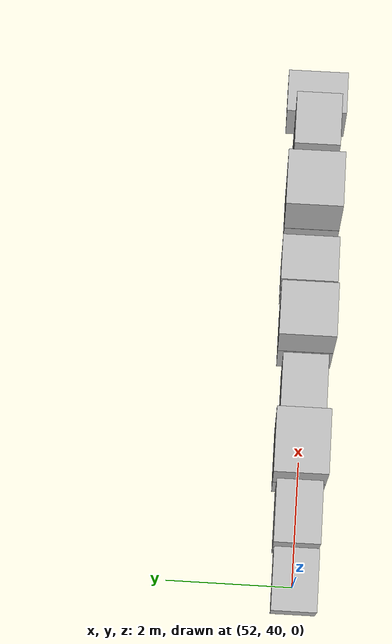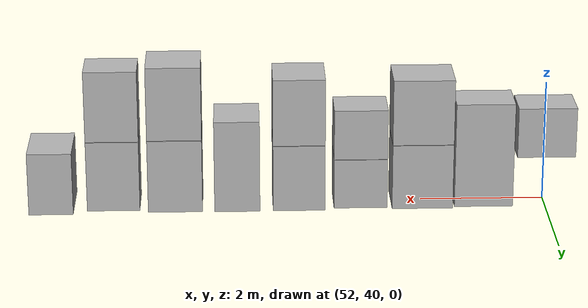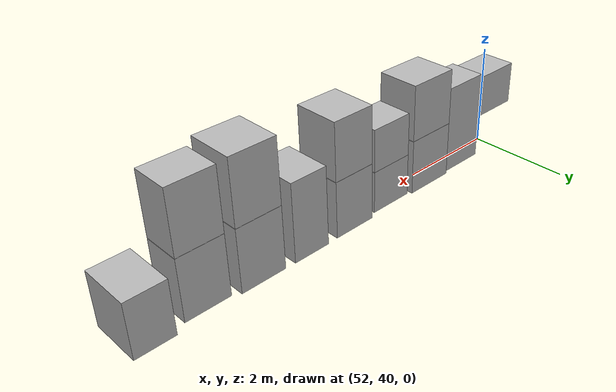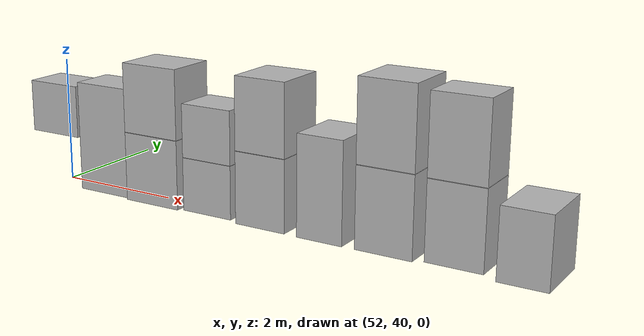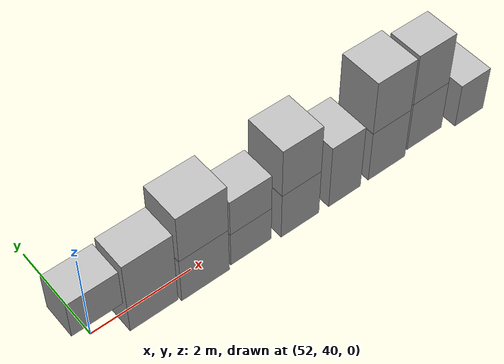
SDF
<sdf version="1.5">
 <world name="default">
  <model name="ground_plane">
   <static>true</static>
   <link name="link">
    <collision name="collision">
     <geometry><plane><normal>0 0 1</normal><size>250 250</size></plane></geometry>
     <surface><friction><ode><mu>1</mu><mu2>1</mu2></ode></friction></surface>
    </collision>
    <visual name="grass">
     <cast_shadows>false</cast_shadows>
     <geometry><mesh><uri>file://grass_plane/meshes/grass_plane.dae</uri></mesh></geometry>
    </visual>
   </link>
  </model>
  <model name="Cardboard_box_top_277">
   <link name="link_0">
    <pose>52 40 0.837281805771 0 0 0</pose>
    <inertial>
     <mass>1</mass>
     <inertia>
      <ixx>0.166667</ixx>
      <ixy>0</ixy>
      <ixz>0</ixz>
      <iyy>0.166667</iyy>
      <iyz>0</iyz>
      <izz>0.166667</izz>
     </inertia>
    </inertial>
    <collision name="collision">
     <geometry>
      <mesh>
       <uri>model://Cardboard_box/meshes/cardboard_box.dae</uri>
       <scale>2.37126441306 1.71776561634 2.09320451443</scale>
      </mesh>
     </geometry>
    </collision>
    <visual name="visual">
     <geometry>
      <mesh>
       <uri>model://Cardboard_box/meshes/cardboard_box.dae</uri>
       <scale>2.37126441306 1.71776561634 2.09320451443</scale>
      </mesh>
     </geometry>
    </visual>
   </link>
   <static>1</static>
  </model>
  <model name="Cardboard_box_278">
   <link name="link_0">
    <pose>53 40 0 0 0 0</pose>
    <inertial>
     <mass>1</mass>
     <inertia>
      <ixx>0.166667</ixx>
      <ixy>0</ixy>
      <ixz>0</ixz>
      <iyy>0.166667</iyy>
      <iyz>0</iyz>
      <izz>0.166667</izz>
     </inertia>
    </inertial>
    <collision name="collision">
     <geometry>
      <mesh>
       <uri>model://Cardboard_box/meshes/cardboard_box.dae</uri>
       <scale>2.39028671656 1.77040314896 4.41440518079</scale>
      </mesh>
     </geometry>
    </collision>
    <visual name="visual">
     <geometry>
      <mesh>
       <uri>model://Cardboard_box/meshes/cardboard_box.dae</uri>
       <scale>2.39028671656 1.77040314896 4.41440518079</scale>
      </mesh>
     </geometry>
    </visual>
   </link>
   <static>1</static>
  </model>
  <model name="Cardboard_box_279">
   <link name="link_0">
    <pose>54 40 0 0 0 0</pose>
    <inertial>
     <mass>1</mass>
     <inertia>
      <ixx>0.166667</ixx>
      <ixy>0</ixy>
      <ixz>0</ixz>
      <iyy>0.166667</iyy>
      <iyz>0</iyz>
      <izz>0.166667</izz>
     </inertia>
    </inertial>
    <collision name="collision">
     <geometry>
      <mesh>
       <uri>model://Cardboard_box/meshes/cardboard_box.dae</uri>
       <scale>2.47949517343 2.05961229612 2.73919506146</scale>
      </mesh>
     </geometry>
    </collision>
    <visual name="visual">
     <geometry>
      <mesh>
       <uri>model://Cardboard_box/meshes/cardboard_box.dae</uri>
       <scale>2.47949517343 2.05961229612 2.73919506146</scale>
      </mesh>
     </geometry>
    </visual>
   </link>
   <static>1</static>
  </model>
  <model name="Cardboard_box_top_279">
   <link name="link_0">
    <pose>54 40 1.09567802459 0 0 0</pose>
    <inertial>
     <mass>1</mass>
     <inertia>
      <ixx>0.166667</ixx>
      <ixy>0</ixy>
      <ixz>0</ixz>
      <iyy>0.166667</iyy>
      <iyz>0</iyz>
      <izz>0.166667</izz>
     </inertia>
    </inertial>
    <collision name="collision">
     <geometry>
      <mesh>
       <uri>model://Cardboard_box/meshes/cardboard_box.dae</uri>
       <scale>2.47949517343 2.05961229612 2.73919506146</scale>
      </mesh>
     </geometry>
    </collision>
    <visual name="visual">
     <geometry>
      <mesh>
       <uri>model://Cardboard_box/meshes/cardboard_box.dae</uri>
       <scale>2.47949517343 2.05961229612 2.73919506146</scale>
      </mesh>
     </geometry>
    </visual>
   </link>
   <static>1</static>
  </model>
  <model name="Cardboard_box_280">
   <link name="link_0">
    <pose>55 40 0 0 0 0</pose>
    <inertial>
     <mass>1</mass>
     <inertia>
      <ixx>0.166667</ixx>
      <ixy>0</ixy>
      <ixz>0</ixz>
      <iyy>0.166667</iyy>
      <iyz>0</iyz>
      <izz>0.166667</izz>
     </inertia>
    </inertial>
    <collision name="collision">
     <geometry>
      <mesh>
       <uri>model://Cardboard_box/meshes/cardboard_box.dae</uri>
       <scale>2.17699457178 1.77576241391 2.09499808898</scale>
      </mesh>
     </geometry>
    </collision>
    <visual name="visual">
     <geometry>
      <mesh>
       <uri>model://Cardboard_box/meshes/cardboard_box.dae</uri>
       <scale>2.17699457178 1.77576241391 2.09499808898</scale>
      </mesh>
     </geometry>
    </visual>
   </link>
   <static>1</static>
  </model>
  <model name="Cardboard_box_top_280">
   <link name="link_0">
    <pose>55 40 0.837999235593 0 0 0</pose>
    <inertial>
     <mass>1</mass>
     <inertia>
      <ixx>0.166667</ixx>
      <ixy>0</ixy>
      <ixz>0</ixz>
      <iyy>0.166667</iyy>
      <iyz>0</iyz>
      <izz>0.166667</izz>
     </inertia>
    </inertial>
    <collision name="collision">
     <geometry>
      <mesh>
       <uri>model://Cardboard_box/meshes/cardboard_box.dae</uri>
       <scale>2.17699457178 1.77576241391 2.09499808898</scale>
      </mesh>
     </geometry>
    </collision>
    <visual name="visual">
     <geometry>
      <mesh>
       <uri>model://Cardboard_box/meshes/cardboard_box.dae</uri>
       <scale>2.17699457178 1.77576241391 2.09499808898</scale>
      </mesh>
     </geometry>
    </visual>
   </link>
   <static>1</static>
  </model>
  <model name="Cardboard_box_281">
   <link name="link_0">
    <pose>56 40 0 0 0 0</pose>
    <inertial>
     <mass>1</mass>
     <inertia>
      <ixx>0.166667</ixx>
      <ixy>0</ixy>
      <ixz>0</ixz>
      <iyy>0.166667</iyy>
      <iyz>0</iyz>
      <izz>0.166667</izz>
     </inertia>
    </inertial>
    <collision name="collision">
     <geometry>
      <mesh>
       <uri>model://Cardboard_box/meshes/cardboard_box.dae</uri>
       <scale>2.11695017366 2.19663669851 2.79365199651</scale>
      </mesh>
     </geometry>
    </collision>
    <visual name="visual">
     <geometry>
      <mesh>
       <uri>model://Cardboard_box/meshes/cardboard_box.dae</uri>
       <scale>2.11695017366 2.19663669851 2.79365199651</scale>
      </mesh>
     </geometry>
    </visual>
   </link>
   <static>1</static>
  </model>
  <model name="Cardboard_box_top_281">
   <link name="link_0">
    <pose>56 40 1.1174607986 0 0 0</pose>
    <inertial>
     <mass>1</mass>
     <inertia>
      <ixx>0.166667</ixx>
      <ixy>0</ixy>
      <ixz>0</ixz>
      <iyy>0.166667</iyy>
      <iyz>0</iyz>
      <izz>0.166667</izz>
     </inertia>
    </inertial>
    <collision name="collision">
     <geometry>
      <mesh>
       <uri>model://Cardboard_box/meshes/cardboard_box.dae</uri>
       <scale>2.11695017366 2.19663669851 2.79365199651</scale>
      </mesh>
     </geometry>
    </collision>
    <visual name="visual">
     <geometry>
      <mesh>
       <uri>model://Cardboard_box/meshes/cardboard_box.dae</uri>
       <scale>2.11695017366 2.19663669851 2.79365199651</scale>
      </mesh>
     </geometry>
    </visual>
   </link>
   <static>1</static>
  </model>
  <model name="Cardboard_box_282">
   <link name="link_0">
    <pose>57 40 0 0 0 0</pose>
    <inertial>
     <mass>1</mass>
     <inertia>
      <ixx>0.166667</ixx>
      <ixy>0</ixy>
      <ixz>0</ixz>
      <iyy>0.166667</iyy>
      <iyz>0</iyz>
      <izz>0.166667</izz>
     </inertia>
    </inertial>
    <collision name="collision">
     <geometry>
      <mesh>
       <uri>model://Cardboard_box/meshes/cardboard_box.dae</uri>
       <scale>1.84501728168 2.25720686695 3.86404695737</scale>
      </mesh>
     </geometry>
    </collision>
    <visual name="visual">
     <geometry>
      <mesh>
       <uri>model://Cardboard_box/meshes/cardboard_box.dae</uri>
       <scale>1.84501728168 2.25720686695 3.86404695737</scale>
      </mesh>
     </geometry>
    </visual>
   </link>
   <static>1</static>
  </model>
  <model name="Cardboard_box_283">
   <link name="link_0">
    <pose>58 40 0 0 0 0</pose>
    <inertial>
     <mass>1</mass>
     <inertia>
      <ixx>0.166667</ixx>
      <ixy>0</ixy>
      <ixz>0</ixz>
      <iyy>0.166667</iyy>
      <iyz>0</iyz>
      <izz>0.166667</izz>
     </inertia>
    </inertial>
    <collision name="collision">
     <geometry>
      <mesh>
       <uri>model://Cardboard_box/meshes/cardboard_box.dae</uri>
       <scale>2.20909701449 2.20376117722 3.07440010062</scale>
      </mesh>
     </geometry>
    </collision>
    <visual name="visual">
     <geometry>
      <mesh>
       <uri>model://Cardboard_box/meshes/cardboard_box.dae</uri>
       <scale>2.20909701449 2.20376117722 3.07440010062</scale>
      </mesh>
     </geometry>
    </visual>
   </link>
   <static>1</static>
  </model>
  <model name="Cardboard_box_top_283">
   <link name="link_0">
    <pose>58 40 1.22976004025 0 0 0</pose>
    <inertial>
     <mass>1</mass>
     <inertia>
      <ixx>0.166667</ixx>
      <ixy>0</ixy>
      <ixz>0</ixz>
      <iyy>0.166667</iyy>
      <iyz>0</iyz>
      <izz>0.166667</izz>
     </inertia>
    </inertial>
    <collision name="collision">
     <geometry>
      <mesh>
       <uri>model://Cardboard_box/meshes/cardboard_box.dae</uri>
       <scale>2.20909701449 2.20376117722 3.07440010062</scale>
      </mesh>
     </geometry>
    </collision>
    <visual name="visual">
     <geometry>
      <mesh>
       <uri>model://Cardboard_box/meshes/cardboard_box.dae</uri>
       <scale>2.20909701449 2.20376117722 3.07440010062</scale>
      </mesh>
     </geometry>
    </visual>
   </link>
   <static>1</static>
  </model>
  <model name="Cardboard_box_284">
   <link name="link_0">
    <pose>59 40 0 0 0 0</pose>
    <inertial>
     <mass>1</mass>
     <inertia>
      <ixx>0.166667</ixx>
      <ixy>0</ixy>
      <ixz>0</ixz>
      <iyy>0.166667</iyy>
      <iyz>0</iyz>
      <izz>0.166667</izz>
     </inertia>
    </inertial>
    <collision name="collision">
     <geometry>
      <mesh>
       <uri>model://Cardboard_box/meshes/cardboard_box.dae</uri>
       <scale>2.14236070441 1.77988873221 2.96502041689</scale>
      </mesh>
     </geometry>
    </collision>
    <visual name="visual">
     <geometry>
      <mesh>
       <uri>model://Cardboard_box/meshes/cardboard_box.dae</uri>
       <scale>2.14236070441 1.77988873221 2.96502041689</scale>
      </mesh>
     </geometry>
    </visual>
   </link>
   <static>1</static>
  </model>
  <model name="Cardboard_box_top_284">
   <link name="link_0">
    <pose>59 40 1.18600816675 0 0 0</pose>
    <inertial>
     <mass>1</mass>
     <inertia>
      <ixx>0.166667</ixx>
      <ixy>0</ixy>
      <ixz>0</ixz>
      <iyy>0.166667</iyy>
      <iyz>0</iyz>
      <izz>0.166667</izz>
     </inertia>
    </inertial>
    <collision name="collision">
     <geometry>
      <mesh>
       <uri>model://Cardboard_box/meshes/cardboard_box.dae</uri>
       <scale>2.14236070441 1.77988873221 2.96502041689</scale>
      </mesh>
     </geometry>
    </collision>
    <visual name="visual">
     <geometry>
      <mesh>
       <uri>model://Cardboard_box/meshes/cardboard_box.dae</uri>
       <scale>2.14236070441 1.77988873221 2.96502041689</scale>
      </mesh>
     </geometry>
    </visual>
   </link>
   <static>1</static>
  </model>
  <model name="Cardboard_box_285">
   <link name="link_0">
    <pose>60 40 0 0 0 0</pose>
    <inertial>
     <mass>1</mass>
     <inertia>
      <ixx>0.166667</ixx>
      <ixy>0</ixy>
      <ixz>0</ixz>
      <iyy>0.166667</iyy>
      <iyz>0</iyz>
      <izz>0.166667</izz>
     </inertia>
    </inertial>
    <collision name="collision">
     <geometry>
      <mesh>
       <uri>model://Cardboard_box/meshes/cardboard_box.dae</uri>
       <scale>1.7978200823 2.46832205922 2.61689341016</scale>
      </mesh>
     </geometry>
    </collision>
    <visual name="visual">
     <geometry>
      <mesh>
       <uri>model://Cardboard_box/meshes/cardboard_box.dae</uri>
       <scale>1.7978200823 2.46832205922 2.61689341016</scale>
      </mesh>
     </geometry>
    </visual>
   </link>
   <static>1</static>
  </model>
 </world>
</sdf>
